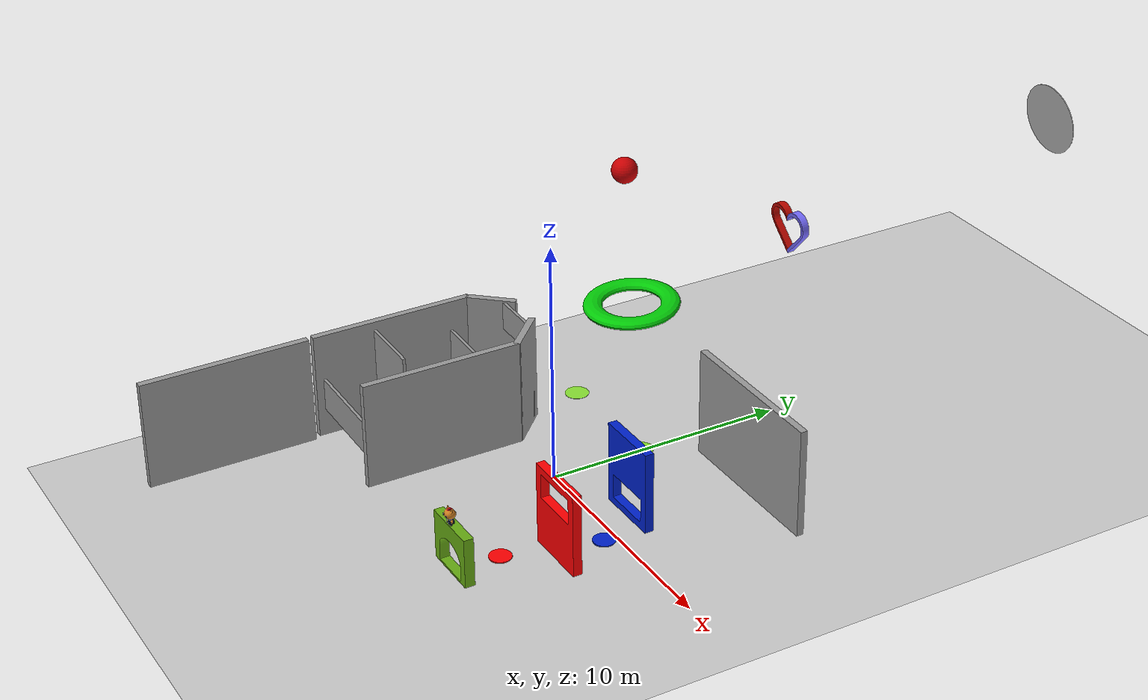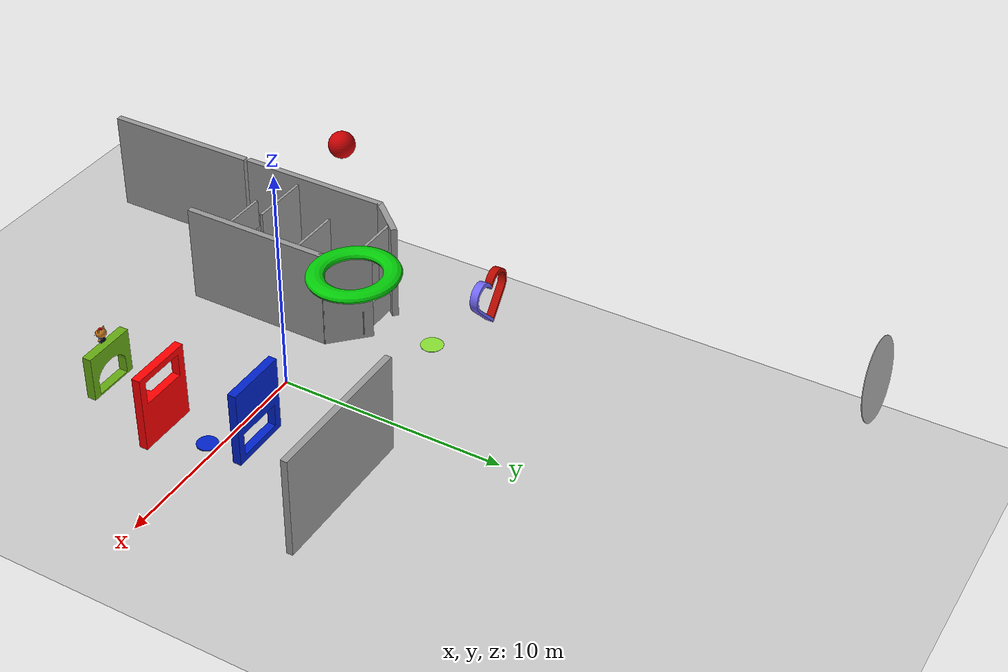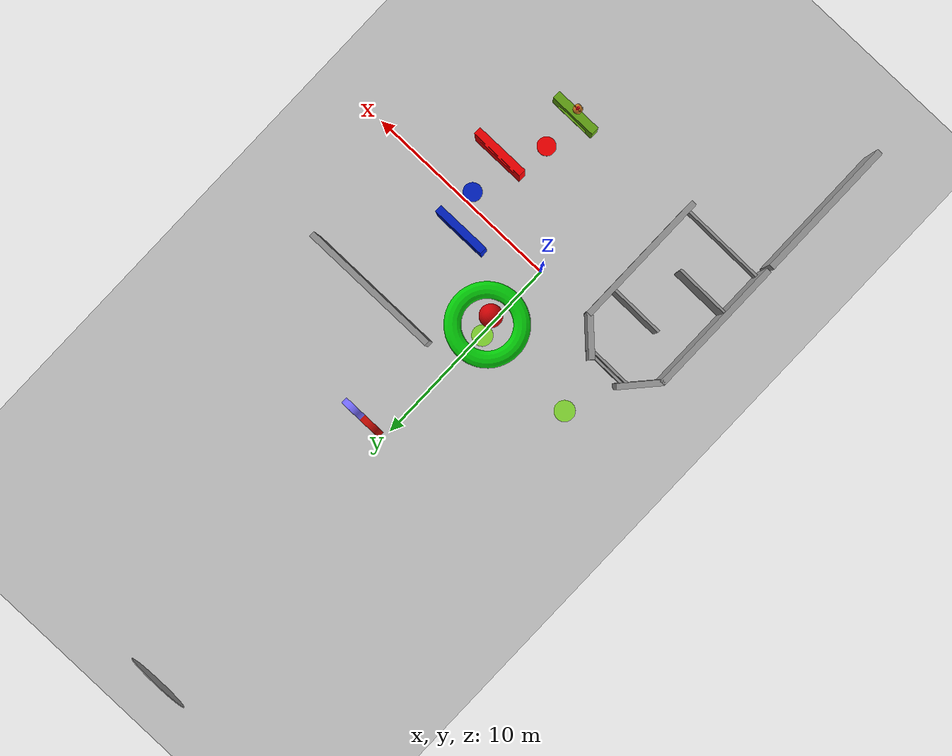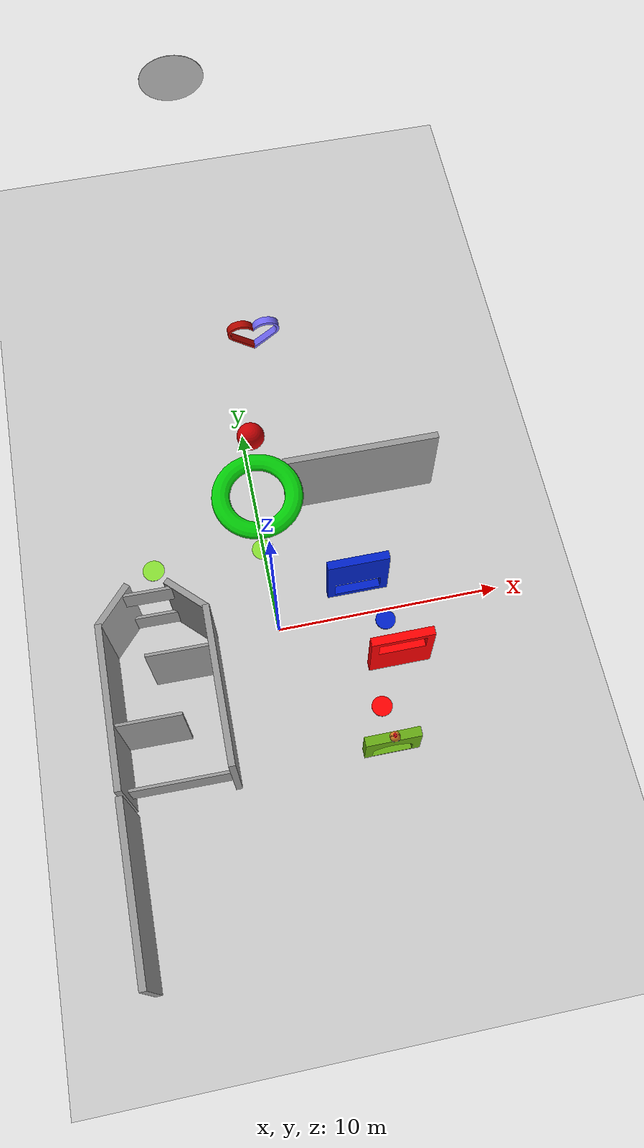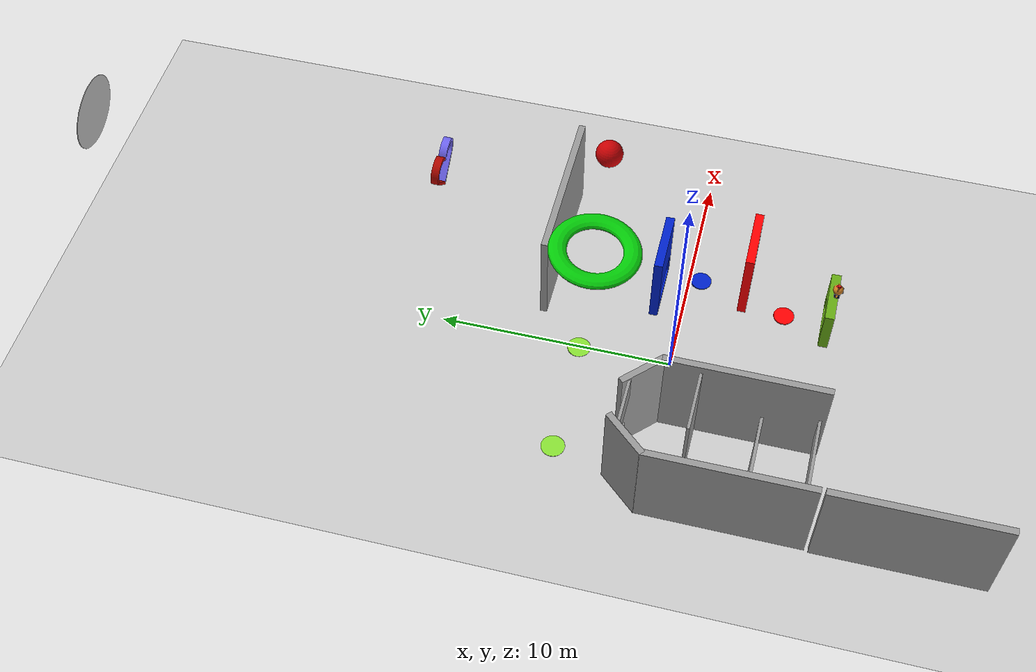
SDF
<sdf version="1.7">
 <world name="default">
  <light name="sun" type="directional">
   <cast_shadows>0</cast_shadows>
   <pose>0 0 10 0 -0 0</pose>
   <diffuse>0.8 0.8 0.8 1</diffuse>
   <specular>0.2 0.2 0.2 1</specular>
   <attenuation>
    <range>1000</range>
    <constant>0.9</constant>
    <linear>0.01</linear>
    <quadratic>0.001</quadratic>
   </attenuation>
   <direction>-0.5 1 -0.75</direction>
   <spot><inner_angle>0</inner_angle><outer_angle>0</outer_angle><falloff>0</falloff></spot>
  </light>
  <model name="ground_plane">
   <static>1</static>
   <link name="link">
    <collision name="collision">
     <geometry><plane><normal>0 0 1</normal><size>100 100</size></plane></geometry>
     <surface>
      <contact><collide_bitmask>65535</collide_bitmask></contact>
      <friction><ode><mu>100</mu><mu2>50</mu2></ode></friction>
     </surface>
    </collision>
    <visual name="visual">
     <cast_shadows>0</cast_shadows>
     <geometry><plane><normal>0 0 1</normal><size>100 100</size></plane></geometry>
     <material>
      <script><uri>file://media/materials/scripts/gazebo.material</uri><name>Gazebo/Grey</name></script>
     </material>
    </visual>
   </link>
  </model>
  <gravity>0 0 -9.8</gravity>
  <magnetic_field>6e-06 2.3e-05 -4.2e-05</magnetic_field>
  <atmosphere type="adiabatic"/>
  <physics type="ode">
   <max_step_size>0.001</max_step_size>
   <real_time_factor>1</real_time_factor>
   <real_time_update_rate>1000</real_time_update_rate>
  </physics>
  <scene><ambient>0.4 0.4 0.4 1</ambient><background>0.7 0.7 0.7 1</background><shadows>1</shadows></scene>
  <spherical_coordinates>
   <surface_model>EARTH_WGS84</surface_model>
   <latitude_deg>0</latitude_deg>
   <longitude_deg>0</longitude_deg>
   <elevation>0</elevation>
   <heading_deg>0</heading_deg>
  </spherical_coordinates>
  <model name="tembok_kematian">
   <link name="link">
    <inertial>
     <mass>8.31484</mass>
     <inertia><ixx>45.0049</ixx><ixy>0</ixy><ixz>0</ixz><iyy>13.7643</iyy><iyz>0</iyz><izz>31.3477</izz></inertia>
    </inertial>
    <pose>5.02148 5.10838 1.90447 0 -0 0</pose>
    <gravity>0</gravity>
    <visual name="visual">
     <geometry><box><size>0.27805 6.7204 4.44831</size></box></geometry>
     <material>
      <script><name>Gazebo/Grey</name><uri>file://media/materials/scripts/gazebo.material</uri></script>
      <shader type="pixel"><normal_map>__default__</normal_map></shader>
      <emissive>0 0 0 1</emissive>
     </material>
    </visual>
    <collision name="collision">
     <geometry><box><size>0.27805 6.7204 4.44831</size></box></geometry>
     <surface>
      <friction>
       <ode><mu>1</mu><mu2>1</mu2><fdir1>0 0 0</fdir1><slip1>0</slip1><slip2>0</slip2></ode>
       <torsional>
        <coefficient>1</coefficient>
        <patch_radius>0</patch_radius>
        <surface_radius>0</surface_radius>
        <use_patch_radius>1</use_patch_radius>
        <ode><slip>0</slip></ode>
       </torsional>
      </friction>
      <bounce><restitution_coefficient>0</restitution_coefficient><threshold>1e+06</threshold></bounce>
      <contact>
       <collide_without_contact>0</collide_without_contact>
       <collide_without_contact_bitmask>1</collide_without_contact_bitmask>
       <collide_bitmask>1</collide_bitmask>
       <ode>
        <soft_cfm>0</soft_cfm>
        <soft_erp>0.2</soft_erp>
        <kp>1e+13</kp>
        <kd>1</kd>
        <max_vel>0.01</max_vel>
        <min_depth>0</min_depth>
       </ode>
       <bullet>
        <split_impulse>1</split_impulse>
        <split_impulse_penetration_threshold>-0.01</split_impulse_penetration_threshold>
        <soft_cfm>0</soft_cfm>
        <soft_erp>0.2</soft_erp>
        <kp>1e+13</kp>
        <kd>1</kd>
       </bullet>
      </contact>
     </surface>
    </collision>
   </link>
   <link name="link_clone">
    <inertial>
     <mass>8.43633</mass>
     <inertia><ixx>46.6025</ixx><ixy>0</ixy><ixz>0</ixz><iyy>13.9655</iyy><iyz>0</iyz><izz>32.7458</izz></inertia>
    </inertial>
    <pose>0.602375 5.06403 1.90447 0 -0 0</pose>
    <gravity>0</gravity>
    <visual name="visual">
     <geometry><box><size>0.27805 6.81916 4.44831</size></box></geometry>
     <material>
      <script><name>Gazebo/Grey</name><uri>file://media/materials/scripts/gazebo.material</uri></script>
      <shader type="pixel"><normal_map>__default__</normal_map></shader>
      <emissive>0 0 0 1</emissive>
     </material>
    </visual>
    <collision name="collision">
     <geometry><box><size>0.27805 6.81916 4.44831</size></box></geometry>
     <surface>
      <friction>
       <ode><mu>1</mu><mu2>1</mu2><fdir1>0 0 0</fdir1><slip1>0</slip1><slip2>0</slip2></ode>
       <torsional>
        <coefficient>1</coefficient>
        <patch_radius>0</patch_radius>
        <surface_radius>0</surface_radius>
        <use_patch_radius>1</use_patch_radius>
        <ode><slip>0</slip></ode>
       </torsional>
      </friction>
      <bounce><restitution_coefficient>0</restitution_coefficient><threshold>1e+06</threshold></bounce>
      <contact>
       <collide_without_contact>0</collide_without_contact>
       <collide_without_contact_bitmask>1</collide_without_contact_bitmask>
       <collide_bitmask>1</collide_bitmask>
       <ode>
        <soft_cfm>0</soft_cfm>
        <soft_erp>0.2</soft_erp>
        <kp>1e+13</kp>
        <kd>1</kd>
        <max_vel>0.01</max_vel>
        <min_depth>0</min_depth>
       </ode>
       <bullet>
        <split_impulse>1</split_impulse>
        <split_impulse_penetration_threshold>-0.01</split_impulse_penetration_threshold>
        <soft_cfm>0</soft_cfm>
        <soft_erp>0.2</soft_erp>
        <kp>1e+13</kp>
        <kd>1</kd>
       </bullet>
      </contact>
     </surface>
    </collision>
   </link>
   <link name="link_clone_0">
    <inertial>
     <mass>0.755513</mass>
     <inertia><ixx>1.3548</ixx><ixy>0</ixy><ixz>0</ixz><iyy>0.118161</iyy><iyz>0</iyz><izz>1.23861</izz></inertia>
    </inertial>
    <pose>2.78886 2.00997 1.50785 0 -0 1.55834</pose>
    <gravity>0</gravity>
    <visual name="visual">
     <geometry><box><size>0.125195 4.43368 1.36422</size></box></geometry>
     <material>
      <script><name>Gazebo/Grey</name><uri>file://media/materials/scripts/gazebo.material</uri></script>
      <shader type="pixel"><normal_map>__default__</normal_map></shader>
      <emissive>0 0 0 1</emissive>
     </material>
    </visual>
    <collision name="collision">
     <geometry><box><size>0.125195 4.43368 1.36422</size></box></geometry>
     <surface>
      <friction>
       <ode><mu>1</mu><mu2>1</mu2><fdir1>0 0 0</fdir1><slip1>0</slip1><slip2>0</slip2></ode>
       <torsional>
        <coefficient>1</coefficient>
        <patch_radius>0</patch_radius>
        <surface_radius>0</surface_radius>
        <use_patch_radius>1</use_patch_radius>
        <ode><slip>0</slip></ode>
       </torsional>
      </friction>
      <bounce><restitution_coefficient>0</restitution_coefficient><threshold>1e+06</threshold></bounce>
      <contact>
       <collide_without_contact>0</collide_without_contact>
       <collide_without_contact_bitmask>1</collide_without_contact_bitmask>
       <collide_bitmask>1</collide_bitmask>
       <ode>
        <soft_cfm>0</soft_cfm>
        <soft_erp>0.2</soft_erp>
        <kp>1e+13</kp>
        <kd>1</kd>
        <max_vel>0.01</max_vel>
        <min_depth>0</min_depth>
       </ode>
       <bullet>
        <split_impulse>1</split_impulse>
        <split_impulse_penetration_threshold>-0.01</split_impulse_penetration_threshold>
        <soft_cfm>0</soft_cfm>
        <soft_erp>0.2</soft_erp>
        <kp>1e+13</kp>
        <kd>1</kd>
       </bullet>
      </contact>
     </surface>
    </collision>
   </link>
   <link name="link_clone_0_clone">
    <inertial>
     <mass>1.40364</mass>
     <inertia><ixx>2.78993</ixx><ixy>0</ixy><ixz>0</ixz><iyy>1.8637</iyy><iyz>0</iyz><izz>0.9299</izz></inertia>
    </inertial>
    <pose>2.02435 4.28959 1.77584 0 -0 1.55834</pose>
    <gravity>0</gravity>
    <visual name="visual">
     <geometry><box><size>0.125195 2.81678 3.98968</size></box></geometry>
     <material>
      <script><name>Gazebo/Grey</name><uri>file://media/materials/scripts/gazebo.material</uri></script>
      <shader type="pixel"><normal_map>__default__</normal_map></shader>
      <emissive>0 0 0 1</emissive>
     </material>
    </visual>
    <collision name="collision">
     <geometry><box><size>0.125195 2.81678 3.98968</size></box></geometry>
     <surface>
      <friction>
       <ode><mu>1</mu><mu2>1</mu2><fdir1>0 0 0</fdir1><slip1>0</slip1><slip2>0</slip2></ode>
       <torsional>
        <coefficient>1</coefficient>
        <patch_radius>0</patch_radius>
        <surface_radius>0</surface_radius>
        <use_patch_radius>1</use_patch_radius>
        <ode><slip>0</slip></ode>
       </torsional>
      </friction>
      <bounce><restitution_coefficient>0</restitution_coefficient><threshold>1e+06</threshold></bounce>
      <contact>
       <collide_without_contact>0</collide_without_contact>
       <collide_without_contact_bitmask>1</collide_without_contact_bitmask>
       <collide_bitmask>1</collide_bitmask>
       <ode>
        <soft_cfm>0</soft_cfm>
        <soft_erp>0.2</soft_erp>
        <kp>1e+13</kp>
        <kd>1</kd>
        <max_vel>0.01</max_vel>
        <min_depth>0</min_depth>
       </ode>
       <bullet>
        <split_impulse>1</split_impulse>
        <split_impulse_penetration_threshold>-0.01</split_impulse_penetration_threshold>
        <soft_cfm>0</soft_cfm>
        <soft_erp>0.2</soft_erp>
        <kp>1e+13</kp>
        <kd>1</kd>
       </bullet>
      </contact>
     </surface>
    </collision>
   </link>
   <link name="link_clone_0_clone_0">
    <inertial>
     <mass>0.362019</mass>
     <inertia>
      <ixx>0.220077</ixx>
      <ixy>0</ixy>
      <ixz>0</ixz>
      <iyy>0.0436996</iyy>
      <iyz>0</iyz>
      <izz>0.177323</izz>
     </inertia>
    </inertial>
    <pose>2.76694 9.59905 0.435079 0 -0 1.55834</pose>
    <gravity>0</gravity>
    <visual name="visual">
     <geometry><box><size>0.125195 2.42118 1.19702</size></box></geometry>
     <material>
      <script><name>Gazebo/Grey</name><uri>file://media/materials/scripts/gazebo.material</uri></script>
      <shader type="pixel"><normal_map>__default__</normal_map></shader>
      <emissive>0 0 0 1</emissive>
     </material>
    </visual>
    <collision name="collision">
     <geometry><box><size>0.125195 2.42118 1.19702</size></box></geometry>
     <surface>
      <friction>
       <ode><mu>1</mu><mu2>1</mu2><fdir1>0 0 0</fdir1><slip1>0</slip1><slip2>0</slip2></ode>
       <torsional>
        <coefficient>1</coefficient>
        <patch_radius>0</patch_radius>
        <surface_radius>0</surface_radius>
        <use_patch_radius>1</use_patch_radius>
        <ode><slip>0</slip></ode>
       </torsional>
      </friction>
      <bounce><restitution_coefficient>0</restitution_coefficient><threshold>1e+06</threshold></bounce>
      <contact>
       <collide_without_contact>0</collide_without_contact>
       <collide_without_contact_bitmask>1</collide_without_contact_bitmask>
       <collide_bitmask>1</collide_bitmask>
       <ode>
        <soft_cfm>0</soft_cfm>
        <soft_erp>0.2</soft_erp>
        <kp>1e+13</kp>
        <kd>1</kd>
        <max_vel>0.01</max_vel>
        <min_depth>0</min_depth>
       </ode>
       <bullet>
        <split_impulse>1</split_impulse>
        <split_impulse_penetration_threshold>-0.01</split_impulse_penetration_threshold>
        <soft_cfm>0</soft_cfm>
        <soft_erp>0.2</soft_erp>
        <kp>1e+13</kp>
        <kd>1</kd>
       </bullet>
      </contact>
     </surface>
    </collision>
   </link>
   <link name="link_clone_0_clone_0_clone">
    <inertial>
     <mass>0.362019</mass>
     <inertia>
      <ixx>0.220077</ixx>
      <ixy>0</ixy>
      <ixz>0</ixz>
      <iyy>0.0436996</iyy>
      <iyz>0</iyz>
      <izz>0.177323</izz>
     </inertia>
    </inertial>
    <pose>2.72972 9.51919 3.45775 0 -0 1.55834</pose>
    <gravity>0</gravity>
    <visual name="visual">
     <geometry><box><size>0.125195 2.42118 1.19702</size></box></geometry>
     <material>
      <script><name>Gazebo/Grey</name><uri>file://media/materials/scripts/gazebo.material</uri></script>
      <shader type="pixel"><normal_map>__default__</normal_map></shader>
      <emissive>0 0 0 1</emissive>
     </material>
    </visual>
    <collision name="collision">
     <geometry><box><size>0.125195 2.42118 1.19702</size></box></geometry>
     <surface>
      <friction>
       <ode><mu>1</mu><mu2>1</mu2><fdir1>0 0 0</fdir1><slip1>0</slip1><slip2>0</slip2></ode>
       <torsional>
        <coefficient>1</coefficient>
        <patch_radius>0</patch_radius>
        <surface_radius>0</surface_radius>
        <use_patch_radius>1</use_patch_radius>
        <ode><slip>0</slip></ode>
       </torsional>
      </friction>
      <bounce><restitution_coefficient>0</restitution_coefficient><threshold>1e+06</threshold></bounce>
      <contact>
       <collide_without_contact>0</collide_without_contact>
       <collide_without_contact_bitmask>1</collide_without_contact_bitmask>
       <collide_bitmask>1</collide_bitmask>
       <ode>
        <soft_cfm>0</soft_cfm>
        <soft_erp>0.2</soft_erp>
        <kp>1e+13</kp>
        <kd>1</kd>
        <max_vel>0.01</max_vel>
        <min_depth>0</min_depth>
       </ode>
       <bullet>
        <split_impulse>1</split_impulse>
        <split_impulse_penetration_threshold>-0.01</split_impulse_penetration_threshold>
        <soft_cfm>0</soft_cfm>
        <soft_erp>0.2</soft_erp>
        <kp>1e+13</kp>
        <kd>1</kd>
       </bullet>
      </contact>
     </surface>
    </collision>
   </link>
   <link name="link_clone_0_clone_clone">
    <inertial>
     <mass>1.40364</mass>
     <inertia><ixx>2.78993</ixx><ixy>0</ixy><ixz>0</ixz><iyy>1.8637</iyy><iyz>0</iyz><izz>0.9299</izz></inertia>
    </inertial>
    <pose>3.66575 6.89425 1.77584 0 -0 1.55834</pose>
    <gravity>0</gravity>
    <visual name="visual">
     <geometry><box><size>0.125195 2.81678 3.98968</size></box></geometry>
     <material>
      <script><name>Gazebo/Grey</name><uri>file://media/materials/scripts/gazebo.material</uri></script>
      <shader type="pixel"><normal_map>__default__</normal_map></shader>
      <emissive>0 0 0 1</emissive>
     </material>
    </visual>
    <collision name="collision">
     <geometry><box><size>0.125195 2.81678 3.98968</size></box></geometry>
     <surface>
      <friction>
       <ode><mu>1</mu><mu2>1</mu2><fdir1>0 0 0</fdir1><slip1>0</slip1><slip2>0</slip2></ode>
       <torsional>
        <coefficient>1</coefficient>
        <patch_radius>0</patch_radius>
        <surface_radius>0</surface_radius>
        <use_patch_radius>1</use_patch_radius>
        <ode><slip>0</slip></ode>
       </torsional>
      </friction>
      <bounce><restitution_coefficient>0</restitution_coefficient><threshold>1e+06</threshold></bounce>
      <contact>
       <collide_without_contact>0</collide_without_contact>
       <collide_without_contact_bitmask>1</collide_without_contact_bitmask>
       <collide_bitmask>1</collide_bitmask>
       <ode>
        <soft_cfm>0</soft_cfm>
        <soft_erp>0.2</soft_erp>
        <kp>1e+13</kp>
        <kd>1</kd>
        <max_vel>0.01</max_vel>
        <min_depth>0</min_depth>
       </ode>
       <bullet>
        <split_impulse>1</split_impulse>
        <split_impulse_penetration_threshold>-0.01</split_impulse_penetration_threshold>
        <soft_cfm>0</soft_cfm>
        <soft_erp>0.2</soft_erp>
        <kp>1e+13</kp>
        <kd>1</kd>
       </bullet>
      </contact>
     </surface>
    </collision>
   </link>
   <link name="link_clone_clone">
    <inertial>
     <mass>2.63677</mass>
     <inertia><ixx>5.34606</ixx><ixy>0</ixy><ixz>0</ixz><iyy>4.3649</iyy><iyz>0</iyz><izz>1.01513</izz></inertia>
    </inertial>
    <pose>1.26673 9.16575 1.90447 0 0 -0.726763</pose>
    <gravity>0</gravity>
    <visual name="visual">
     <geometry><box><size>0.27805 2.13133 4.44831</size></box></geometry>
     <material>
      <script><name>Gazebo/Grey</name><uri>file://media/materials/scripts/gazebo.material</uri></script>
      <shader type="pixel"><normal_map>__default__</normal_map></shader>
      <emissive>0 0 0 1</emissive>
     </material>
    </visual>
    <collision name="collision">
     <geometry><box><size>0.27805 2.13133 4.44831</size></box></geometry>
     <surface>
      <friction>
       <ode><mu>1</mu><mu2>1</mu2><fdir1>0 0 0</fdir1><slip1>0</slip1><slip2>0</slip2></ode>
       <torsional>
        <coefficient>1</coefficient>
        <patch_radius>0</patch_radius>
        <surface_radius>0</surface_radius>
        <use_patch_radius>1</use_patch_radius>
        <ode><slip>0</slip></ode>
       </torsional>
      </friction>
      <bounce><restitution_coefficient>0</restitution_coefficient><threshold>1e+06</threshold></bounce>
      <contact>
       <collide_without_contact>0</collide_without_contact>
       <collide_without_contact_bitmask>1</collide_without_contact_bitmask>
       <collide_bitmask>1</collide_bitmask>
       <ode>
        <soft_cfm>0</soft_cfm>
        <soft_erp>0.2</soft_erp>
        <kp>1e+13</kp>
        <kd>1</kd>
        <max_vel>0.01</max_vel>
        <min_depth>0</min_depth>
       </ode>
       <bullet>
        <split_impulse>1</split_impulse>
        <split_impulse_penetration_threshold>-0.01</split_impulse_penetration_threshold>
        <soft_cfm>0</soft_cfm>
        <soft_erp>0.2</soft_erp>
        <kp>1e+13</kp>
        <kd>1</kd>
       </bullet>
      </contact>
     </surface>
    </collision>
   </link>
   <link name="link_clone_clone_clone">
    <inertial>
     <mass>2.63748</mass>
     <inertia><ixx>5.34802</ixx><ixy>0</ixy><ixz>0</ixz><iyy>4.36607</iyy><iyz>0</iyz><izz>1.01594</izz></inertia>
    </inertial>
    <pose>4.32028 9.08735 1.90447 0 -0 0.798038</pose>
    <gravity>0</gravity>
    <visual name="visual">
     <geometry><box><size>0.27805 2.1319 4.44831</size></box></geometry>
     <material>
      <script><name>Gazebo/Grey</name><uri>file://media/materials/scripts/gazebo.material</uri></script>
      <shader type="pixel"><normal_map>__default__</normal_map></shader>
      <emissive>0 0 0 1</emissive>
     </material>
    </visual>
    <collision name="collision">
     <geometry><box><size>0.27805 2.1319 4.44831</size></box></geometry>
     <surface>
      <friction>
       <ode><mu>1</mu><mu2>1</mu2><fdir1>0 0 0</fdir1><slip1>0</slip1><slip2>0</slip2></ode>
       <torsional>
        <coefficient>1</coefficient>
        <patch_radius>0</patch_radius>
        <surface_radius>0</surface_radius>
        <use_patch_radius>1</use_patch_radius>
        <ode><slip>0</slip></ode>
       </torsional>
      </friction>
      <bounce><restitution_coefficient>0</restitution_coefficient><threshold>1e+06</threshold></bounce>
      <contact>
       <collide_without_contact>0</collide_without_contact>
       <collide_without_contact_bitmask>1</collide_without_contact_bitmask>
       <collide_bitmask>1</collide_bitmask>
       <ode>
        <soft_cfm>0</soft_cfm>
        <soft_erp>0.2</soft_erp>
        <kp>1e+13</kp>
        <kd>1</kd>
        <max_vel>0.01</max_vel>
        <min_depth>0</min_depth>
       </ode>
       <bullet>
        <split_impulse>1</split_impulse>
        <split_impulse_penetration_threshold>-0.01</split_impulse_penetration_threshold>
        <soft_cfm>0</soft_cfm>
        <soft_erp>0.2</soft_erp>
        <kp>1e+13</kp>
        <kd>1</kd>
       </bullet>
      </contact>
     </surface>
    </collision>
   </link>
   <joint name="link_JOINT_2" type="fixed">
    <parent>link</parent>
    <child>link_clone_0</child>
    <physics>
     <ode><limit><cfm>0</cfm><erp>0.2</erp></limit><suspension><cfm>0</cfm><erp>0.2</erp></suspension></ode>
    </physics>
   </joint>
   <joint name="link_JOINT_3" type="fixed">
    <parent>link</parent>
    <child>link_clone_0_clone_clone</child>
    <physics>
     <ode><limit><cfm>0</cfm><erp>0.2</erp></limit><suspension><cfm>0</cfm><erp>0.2</erp></suspension></ode>
    </physics>
   </joint>
   <joint name="link_JOINT_5" type="fixed">
    <parent>link</parent>
    <child>link_clone_clone_clone</child>
    <physics>
     <ode><limit><cfm>0</cfm><erp>0.2</erp></limit><suspension><cfm>0</cfm><erp>0.2</erp></suspension></ode>
    </physics>
   </joint>
   <joint name="link_clone_JOINT_0" type="fixed">
    <parent>link_clone</parent>
    <child>link_clone_0</child>
    <physics>
     <ode><limit><cfm>0</cfm><erp>0.2</erp></limit><suspension><cfm>0</cfm><erp>0.2</erp></suspension></ode>
    </physics>
   </joint>
   <joint name="link_clone_JOINT_1" type="fixed">
    <parent>link_clone</parent>
    <child>link_clone_0_clone</child>
    <physics>
     <ode><limit><cfm>0</cfm><erp>0.2</erp></limit><suspension><cfm>0</cfm><erp>0.2</erp></suspension></ode>
    </physics>
   </joint>
   <joint name="link_clone_JOINT_4" type="fixed">
    <parent>link_clone</parent>
    <child>link_clone_clone</child>
    <physics>
     <ode><limit><cfm>0</cfm><erp>0.2</erp></limit><suspension><cfm>0</cfm><erp>0.2</erp></suspension></ode>
    </physics>
   </joint>
   <joint name="link_clone_clone_JOINT_6" type="fixed">
    <parent>link_clone_clone</parent>
    <child>link_clone_0_clone_0_clone</child>
    <physics>
     <ode><limit><cfm>0</cfm><erp>0.2</erp></limit><suspension><cfm>0</cfm><erp>0.2</erp></suspension></ode>
    </physics>
   </joint>
   <joint name="link_clone_clone_JOINT_7" type="fixed">
    <parent>link_clone_clone</parent>
    <child>link_clone_0_clone_0</child>
    <physics>
     <ode><limit><cfm>0</cfm><erp>0.2</erp></limit><suspension><cfm>0</cfm><erp>0.2</erp></suspension></ode>
    </physics>
   </joint>
   <joint name="link_clone_clone_clone_JOINT_8" type="fixed">
    <parent>link_clone_clone_clone</parent>
    <child>link_clone_0_clone_0_clone</child>
    <physics>
     <ode><limit><cfm>0</cfm><erp>0.2</erp></limit><suspension><cfm>0</cfm><erp>0.2</erp></suspension></ode>
    </physics>
   </joint>
   <joint name="link_clone_clone_clone_JOINT_9" type="fixed">
    <parent>link_clone_clone_clone</parent>
    <child>link_clone_0_clone_0</child>
    <physics>
     <ode><limit><cfm>0</cfm><erp>0.2</erp></limit><suspension><cfm>0</cfm><erp>0.2</erp></suspension></ode>
    </physics>
   </joint>
   <static>0</static>
   <pose>-7.91301 -8.38359 0.5 0 -0 0</pose>
  </model>
  <model name="vision_obstacle">
   <static>1</static>
   <link name="link">
    <visual name="vision_obstacle_visual">
     <cast_shadows>0</cast_shadows>
     <geometry>
      <mesh><uri>model://vision_obstacle/meshes/obstacle_vision.dae</uri><scale>0.4 0.4 0.4</scale></mesh>
     </geometry>
    </visual>
    <collision name="vision_obstacle_collision">
     <geometry>
      <mesh><uri>model://vision_obstacle/meshes/obstacle_vision.dae</uri><scale>0.4 0.4 0.4</scale></mesh>
     </geometry>
    </collision>
   </link>
   <pose>6 -6.12195 0 0 -0 0</pose>
  </model>
  <model name="tembok_petunjuk">
   <link name="link">
    <inertial>
     <mass>1.08159</mass>
     <inertia><ixx>6.20009</ixx><ixy>0</ixy><ixz>0</ixz><iyy>1.85505</iyy><iyz>0</iyz><izz>4.36009</izz></inertia>
    </inertial>
    <pose>0.119461 -0.708435 0 0 -0 0</pose>
    <gravity>0</gravity>
    <visual name="visual">
     <geometry><box><size>0.28891 6.94915 4.52745</size></box></geometry>
     <material>
      <script><name>Gazebo/Grey</name><uri>file://media/materials/scripts/gazebo.material</uri></script>
      <shader type="pixel"><normal_map>__default__</normal_map></shader>
     </material>
    </visual>
    <collision name="collision">
     <geometry><box><size>0.28891 6.94915 4.52745</size></box></geometry>
     <surface>
      <friction>
       <ode><mu>1</mu><mu2>1</mu2><fdir1>0 0 0</fdir1><slip1>0</slip1><slip2>0</slip2></ode>
       <torsional>
        <coefficient>1</coefficient>
        <patch_radius>0</patch_radius>
        <surface_radius>0</surface_radius>
        <use_patch_radius>1</use_patch_radius>
        <ode><slip>0</slip></ode>
       </torsional>
      </friction>
      <bounce><restitution_coefficient>0</restitution_coefficient><threshold>1e+06</threshold></bounce>
      <contact>
       <collide_without_contact>0</collide_without_contact>
       <collide_without_contact_bitmask>1</collide_without_contact_bitmask>
       <collide_bitmask>1</collide_bitmask>
       <ode>
        <soft_cfm>0</soft_cfm>
        <soft_erp>0.2</soft_erp>
        <kp>1e+13</kp>
        <kd>1</kd>
        <max_vel>0.01</max_vel>
        <min_depth>0</min_depth>
       </ode>
       <bullet>
        <split_impulse>1</split_impulse>
        <split_impulse_penetration_threshold>-0.01</split_impulse_penetration_threshold>
        <soft_cfm>0</soft_cfm>
        <soft_erp>0.2</soft_erp>
        <kp>1e+13</kp>
        <kd>1</kd>
       </bullet>
      </contact>
     </surface>
    </collision>
   </link>
   <static>0</static>
   <pose>-7.41241 -9.66612 2.33959 0 0.000908 0.003823</pose>
  </model>
  <model name="tembok_petunjuk_0">
   <link name="link">
    <inertial>
     <mass>1.08159</mass>
     <inertia><ixx>6.20009</ixx><ixy>0</ixy><ixz>0</ixz><iyy>1.85505</iyy><iyz>0</iyz><izz>4.36009</izz></inertia>
    </inertial>
    <pose>0.119461 -0.708435 0 0 -0 0</pose>
    <gravity>0</gravity>
    <visual name="visual">
     <geometry><box><size>0.28891 6.94915 4.52745</size></box></geometry>
     <material>
      <script><name>Gazebo/Grey</name><uri>file://media/materials/scripts/gazebo.material</uri></script>
      <shader type="pixel"><normal_map>__default__</normal_map></shader>
     </material>
    </visual>
    <collision name="collision">
     <geometry><box><size>0.28891 6.94915 4.52745</size></box></geometry>
     <surface>
      <friction>
       <ode><mu>1</mu><mu2>1</mu2><fdir1>0 0 0</fdir1><slip1>0</slip1><slip2>0</slip2></ode>
       <torsional>
        <coefficient>1</coefficient>
        <patch_radius>0</patch_radius>
        <surface_radius>0</surface_radius>
        <use_patch_radius>1</use_patch_radius>
        <ode><slip>0</slip></ode>
       </torsional>
      </friction>
      <bounce><restitution_coefficient>0</restitution_coefficient><threshold>1e+06</threshold></bounce>
      <contact>
       <collide_without_contact>0</collide_without_contact>
       <collide_without_contact_bitmask>1</collide_without_contact_bitmask>
       <collide_bitmask>1</collide_bitmask>
       <ode>
        <soft_cfm>0</soft_cfm>
        <soft_erp>0.2</soft_erp>
        <kp>1e+13</kp>
        <kd>1</kd>
        <max_vel>0.01</max_vel>
        <min_depth>0</min_depth>
       </ode>
       <bullet>
        <split_impulse>1</split_impulse>
        <split_impulse_penetration_threshold>-0.01</split_impulse_penetration_threshold>
        <soft_cfm>0</soft_cfm>
        <soft_erp>0.2</soft_erp>
        <kp>1e+13</kp>
        <kd>1</kd>
       </bullet>
      </contact>
     </surface>
    </collision>
   </link>
   <static>0</static>
   <pose>5.5704 5.9843 2.42824 0 0 -1.57339</pose>
  </model>
  <model name="lingkaran_penunjuk">
   <link name="link">
    <inertial>
     <mass>1</mass>
     <inertia><ixx>0.145833</ixx><ixy>0</ixy><ixz>0</ixz><iyy>0.145833</iyy><iyz>0</iyz><izz>0.125</izz></inertia>
    </inertial>
    <gravity>0</gravity>
    <visual name="visual">
     <geometry><cylinder><radius>0.5</radius><length>0.0174626</length></cylinder></geometry>
     <material>
      <script><name>Gazebo/Grey</name><uri>file://media/materials/scripts/gazebo.material</uri></script>
      <shader type="pixel"><normal_map>__default__</normal_map></shader>
      <ambient>0.541 0.886 0.204 1</ambient>
      <diffuse>0.541 0.886 0.204 1</diffuse>
      <specular>0.01 0.01 0.01 1</specular>
      <emissive>0 0 0 1</emissive>
     </material>
    </visual>
    <collision name="collision">
     <geometry><cylinder><radius>0.5</radius><length>0.017463</length></cylinder></geometry>
     <surface>
      <friction>
       <ode><mu>1</mu><mu2>1</mu2><fdir1>0 0 0</fdir1><slip1>0</slip1><slip2>0</slip2></ode>
       <torsional>
        <coefficient>1</coefficient>
        <patch_radius>0</patch_radius>
        <surface_radius>0</surface_radius>
        <use_patch_radius>1</use_patch_radius>
        <ode><slip>0</slip></ode>
       </torsional>
      </friction>
      <bounce><restitution_coefficient>0</restitution_coefficient><threshold>1e+06</threshold></bounce>
      <contact>
       <collide_without_contact>0</collide_without_contact>
       <collide_without_contact_bitmask>1</collide_without_contact_bitmask>
       <collide_bitmask>1</collide_bitmask>
       <ode>
        <soft_cfm>0</soft_cfm>
        <soft_erp>0.2</soft_erp>
        <kp>1e+13</kp>
        <kd>1</kd>
        <max_vel>0.01</max_vel>
        <min_depth>0</min_depth>
       </ode>
       <bullet>
        <split_impulse>1</split_impulse>
        <split_impulse_penetration_threshold>-0.01</split_impulse_penetration_threshold>
        <soft_cfm>0</soft_cfm>
        <soft_erp>0.2</soft_erp>
        <kp>1e+13</kp>
        <kd>1</kd>
       </bullet>
      </contact>
     </surface>
    </collision>
   </link>
   <static>0</static>
   <pose>-5.13602 3.88062 0.048319 0 -0 0</pose>
  </model>
  <model name="lingkaran_penunjuk_clone">
   <link name="link">
    <inertial>
     <mass>1</mass>
     <inertia><ixx>0.145833</ixx><ixy>0</ixy><ixz>0</ixz><iyy>0.145833</iyy><iyz>0</iyz><izz>0.125</izz></inertia>
    </inertial>
    <gravity>0</gravity>
    <visual name="visual">
     <geometry><cylinder><radius>0.5</radius><length>0.0174626</length></cylinder></geometry>
     <material>
      <script><name>Gazebo/Grey</name><uri>file://media/materials/scripts/gazebo.material</uri></script>
      <shader type="pixel"><normal_map>__default__</normal_map></shader>
      <ambient>0.541 0.886 0.204 1</ambient>
      <diffuse>0.541 0.886 0.204 1</diffuse>
      <specular>0.01 0.01 0.01 1</specular>
      <emissive>0 0 0 1</emissive>
     </material>
    </visual>
    <collision name="collision">
     <geometry><cylinder><radius>0.5</radius><length>0.017463</length></cylinder></geometry>
     <surface>
      <friction>
       <ode><mu>1</mu><mu2>1</mu2><fdir1>0 0 0</fdir1><slip1>0</slip1><slip2>0</slip2></ode>
       <torsional>
        <coefficient>1</coefficient>
        <patch_radius>0</patch_radius>
        <surface_radius>0</surface_radius>
        <use_patch_radius>1</use_patch_radius>
        <ode><slip>0</slip></ode>
       </torsional>
      </friction>
      <bounce><restitution_coefficient>0</restitution_coefficient><threshold>1e+06</threshold></bounce>
      <contact>
       <collide_without_contact>0</collide_without_contact>
       <collide_without_contact_bitmask>1</collide_without_contact_bitmask>
       <collide_bitmask>1</collide_bitmask>
       <ode>
        <soft_cfm>0</soft_cfm>
        <soft_erp>0.2</soft_erp>
        <kp>1e+13</kp>
        <kd>1</kd>
        <max_vel>0.01</max_vel>
        <min_depth>0</min_depth>
       </ode>
       <bullet>
        <split_impulse>1</split_impulse>
        <split_impulse_penetration_threshold>-0.01</split_impulse_penetration_threshold>
        <soft_cfm>0</soft_cfm>
        <soft_erp>0.2</soft_erp>
        <kp>1e+13</kp>
        <kd>1</kd>
       </bullet>
      </contact>
     </surface>
    </collision>
   </link>
   <static>0</static>
   <pose>-0.045323 3.95308 0.048319 0 -0 0</pose>
  </model>
  <model name="ring">
   <static>1</static>
   <link name="link">
    <visual name="ring_visual">
     <geometry><mesh><uri>model://ring/meshes/ring.dae</uri><scale>1 1 1</scale></mesh></geometry>
    </visual>
    <collision name="ring_collision">
     <geometry><mesh><uri>model://ring/meshes/ring.dae</uri><scale>1 1 1</scale></mesh></geometry>
    </collision>
   </link>
   <pose>-0.021947 3.83429 0.738349 1.62783 -0 0</pose>
  </model>
  <model name="love">
   <static>1</static>
   <link name="link">
    <visual name="love_visual">
     <cast_shadows>0</cast_shadows>
     <geometry><mesh><uri>model://love/meshes/tinker.dae</uri><scale>0.015 0.015 0.015</scale></mesh></geometry>
    </visual>
    <collision name="love_collision">
     <geometry><mesh><uri>model://love/meshes/tinker.dae</uri><scale>0.015 0.015 0.015</scale></mesh></geometry>
    </collision>
   </link>
   <pose>0.981317 10.121 8.63942 1.63103 -0 0</pose>
  </model>
  <model name="dartboard">
   <static>1</static>
   <link name="dartboard_link">
    <visual name="dartboard_visual">
     <geometry><mesh><uri>model://dart_mesh/meshes/dartboard.dae</uri><scale>0.3 0.3 0.05</scale></mesh></geometry>
    </visual>
    <collision name="dartboard_collision">
     <geometry><cylinder><radius>1.5</radius><length>0.05</length></cylinder></geometry>
    </collision>
   </link>
   <pose>-0.360136 23.8096 9.74298 1.67855 -0 0</pose>
  </model>
 </world>
</sdf>
